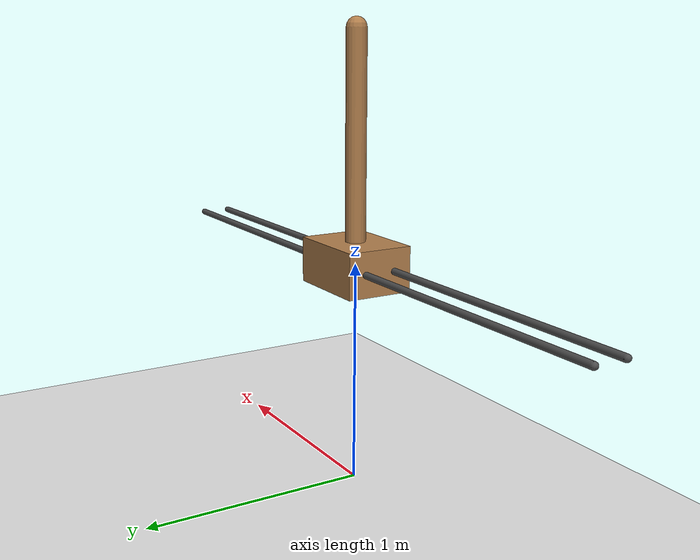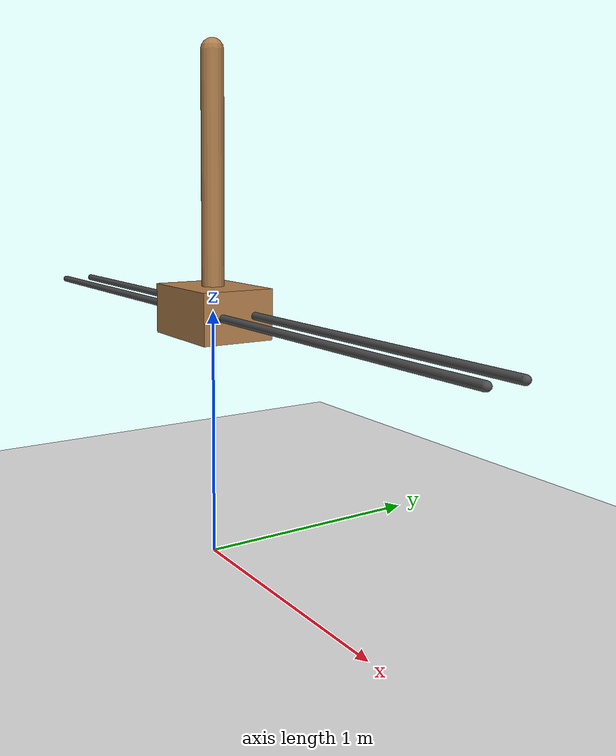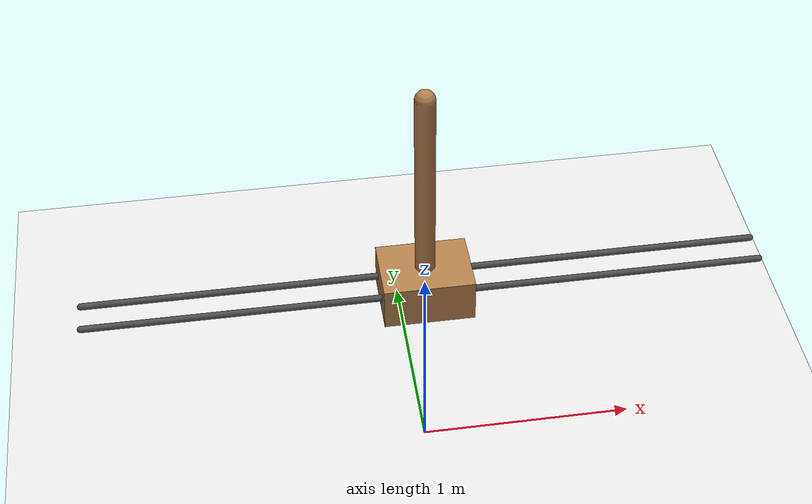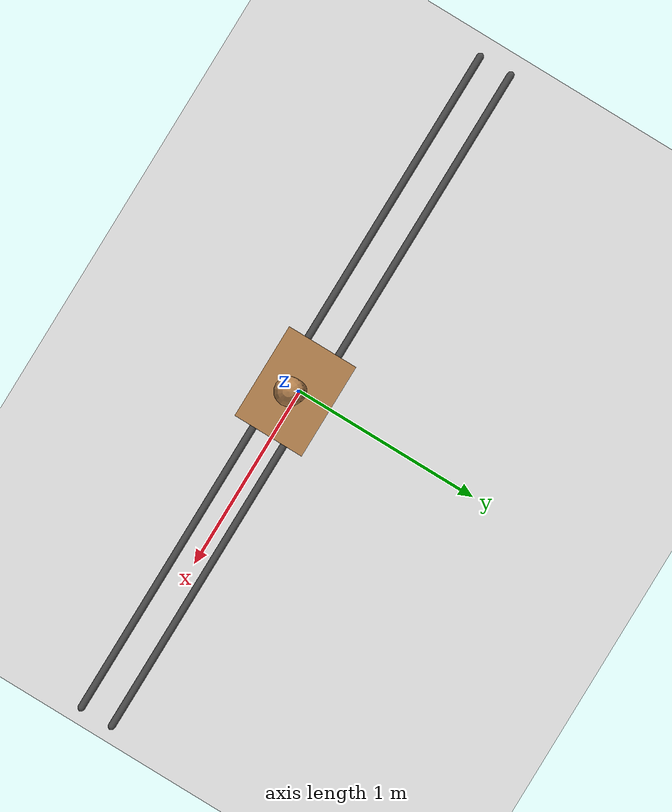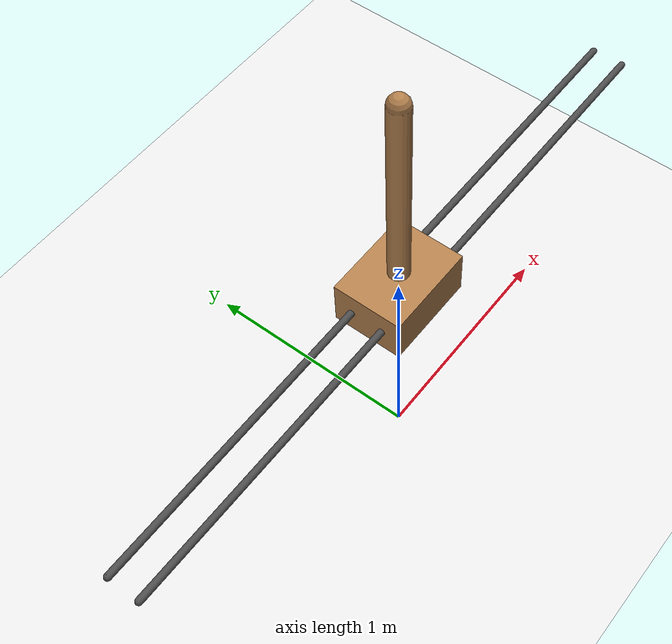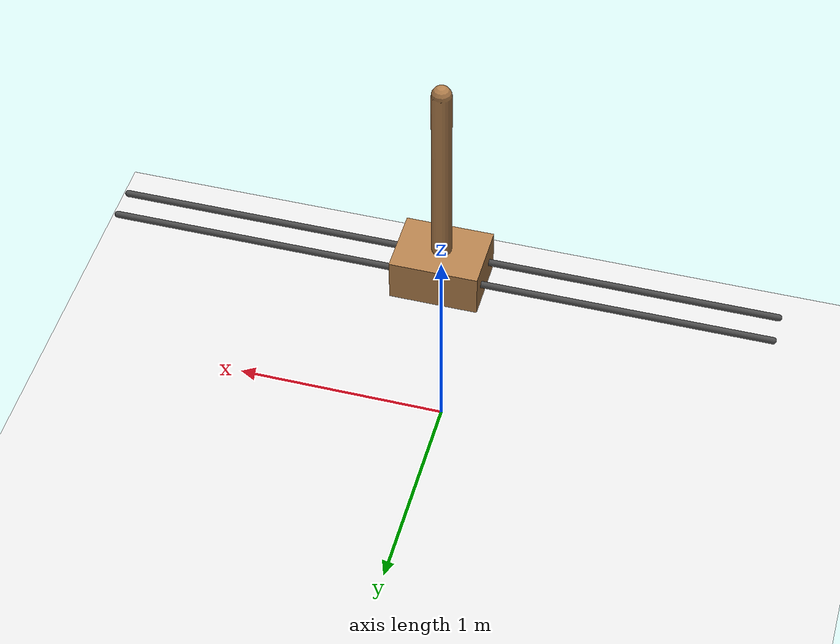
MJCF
<mujoco model="cartpole_swingup">
  <!-- Cart-pole model optimized for MPC, based on dm_control design -->
  <compiler angle="radian"/>

  <option timestep="0.01" integrator="Euler" gravity="0 0 -9.81">
    <flag contact="disable"/>
  </option>

  <default>
    <geom material="default"/>
  </default>

  <asset>
    <material name="default" rgba="0.7 0.5 0.3 1"/>
  </asset>

  <worldbody>
    <light name="top" pos="0 0 3"/>
    <geom name="floor" pos="0 0 -0.05" type="plane" size="2 2 0.1" rgba="0.9 0.9 0.9 1" material=""/>

    <!-- Visualization rails (like dm_control) -->
    <geom name="rail1" type="capsule" pos="0 0.07 1" zaxis="1 0 0" size="0.015 1.5" rgba="0.3 0.3 0.3 1" material=""/>
    <geom name="rail2" type="capsule" pos="0 -0.07 1" zaxis="1 0 0" size="0.015 1.5" rgba="0.3 0.3 0.3 1" material=""/>

    <!-- Cart on rail -->
    <body name="cart" pos="0 0 1">
      <!-- Slider joint with very small damping like dm_control -->
      <joint name="slider" type="slide" axis="1 0 0" limited="true" range="-1.5 1.5"
             damping="0.0005" solreflimit="0.08 1"/>

      <!-- Cart body: mass=1, dimensions from dm_control -->
      <geom name="cart" type="box" size="0.2 0.15 0.1" mass="1.0"/>

      <!-- Pole attached to cart -->
      <body name="pole" pos="0 0 0">
        <!-- Hinge joint with very small damping (dm_control uses 2e-6) -->
        <joint name="hinge" type="hinge" axis="0 1 0" damping="2e-6"/>

        <!-- Pole: capsule from (0,0,0) to (0,0,1), radius=0.045, mass=0.1 like dm_control -->
        <geom name="pole" type="capsule" fromto="0 0 0 0 0 1" size="0.045" mass="0.1"/>
      </body>
    </body>
  </worldbody>

  <actuator>
    <!-- Motor with gear=10, control range [-1, 1] like dm_control -->
    <!-- This means actual force range is [-10, 10] N -->
    <motor name="slide" joint="slider" gear="10" ctrllimited="true" ctrlrange="-1 1"/>
  </actuator>
</mujoco>
